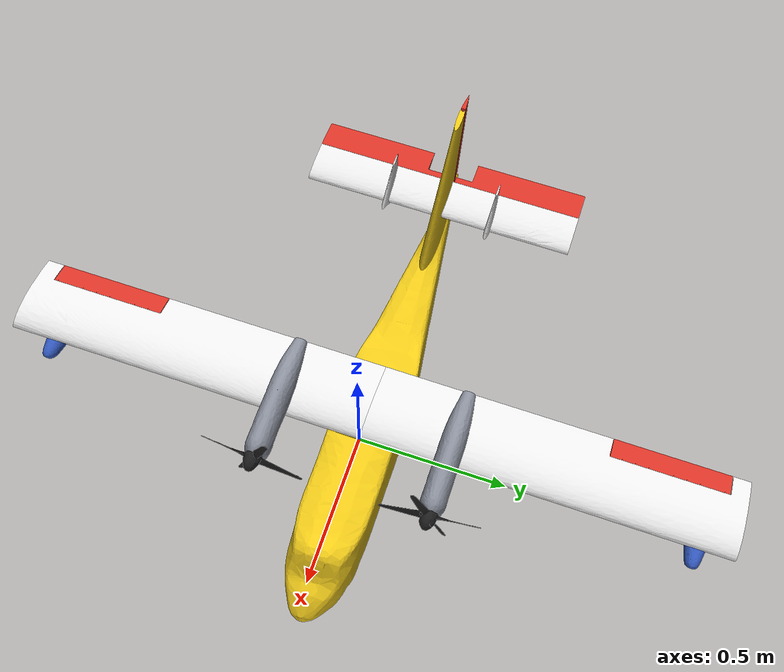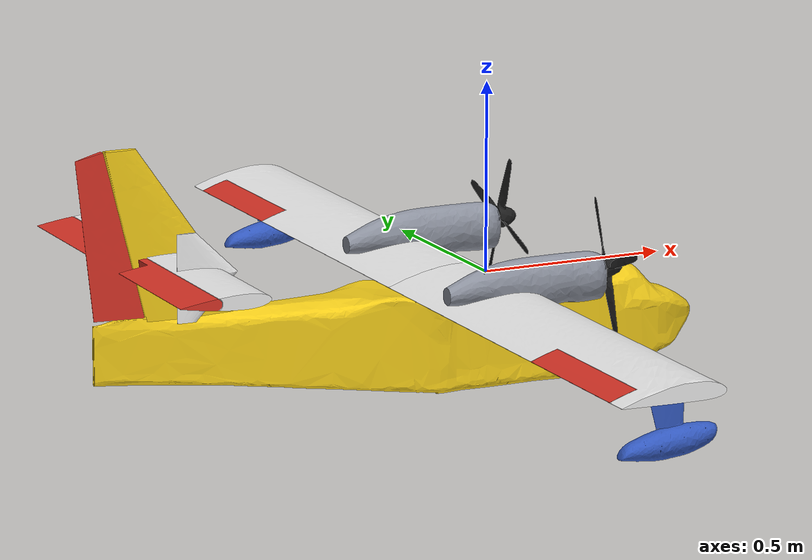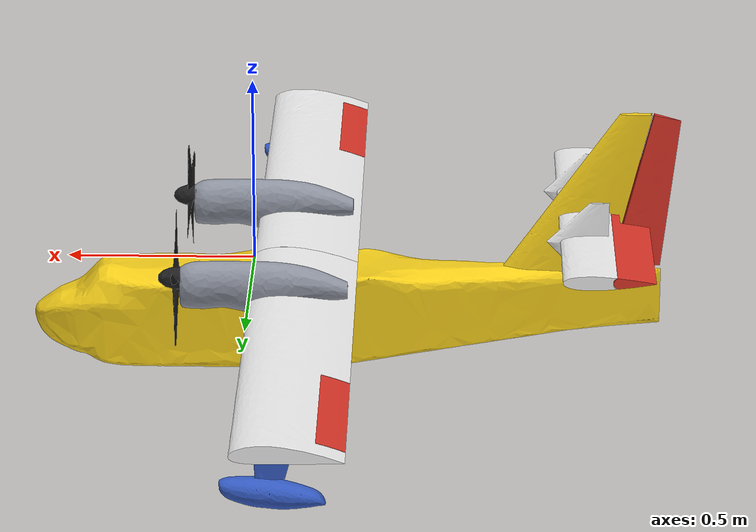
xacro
<?xml version="1.0"?>
<robot name="cl415" xmlns:xacro="http://www.ros.org/wiki/xacro">

  <xacro:arg name="tank" default="full"/>
  <xacro:arg name="water_damping" default="false"/>

  <xacro:include filename="cl415_generated.xacro"/>
  <xacro:include filename="cl415.gazebo.xacro"/>

  <xacro:property name="mesh_dir" value="package://cl415_description/meshes"/>

  <material name="cl415_yellow"><color rgba="0.95 0.80 0.10 1"/></material>
  <material name="cl415_white"><color rgba="0.92 0.92 0.92 1"/></material>
  <material name="cl415_red"><color rgba="0.85 0.20 0.15 1"/></material>
  <material name="cl415_grey"><color rgba="0.55 0.57 0.62 1"/></material>
  <material name="cl415_black"><color rgba="0.12 0.12 0.12 1"/></material>
  <material name="cl415_blue"><color rgba="0.20 0.35 0.75 1"/></material>
  <material name="cl415_tank"><color rgba="0.70 0.85 0.95 1"/></material>

  <!-- root without inertia (keeps KDL quiet); every fixed part hangs off it and gets lumped into it in SDF -->
  <link name="base_link"/>

  <!-- fixed part: mesh in the base frame, inertia and collision from the generated file -->
  <xacro:macro name="fixed_part" params="name material">
    <link name="${name}">
      <visual>
        <origin xyz="0 0 0" rpy="0 0 0"/>
        <geometry><mesh filename="${mesh_dir}/${name}.stl"/></geometry>
        <material name="${material}"/>
      </visual>
      <xacro:call macro="collision_${name}"/>
      <xacro:call macro="inertial_${name}"/>
    </link>
    <joint name="${name}_joint" type="fixed">
      <parent link="base_link"/>
      <child link="${name}"/>
      <origin xyz="0 0 0" rpy="0 0 0"/>
    </joint>
  </xacro:macro>

  <!-- control surface on its hinge line -->
  <xacro:macro name="surface" params="name parent xyz axis limit material">
    <link name="${name}">
      <visual>
        <origin xyz="0 0 0" rpy="0 0 0"/>
        <geometry><mesh filename="${mesh_dir}/${name}.stl"/></geometry>
        <material name="${material}"/>
      </visual>
      <xacro:call macro="collision_${name}"/>
      <xacro:call macro="inertial_${name}"/>
    </link>
    <joint name="${name}_joint" type="revolute">
      <parent link="${parent}"/>
      <child link="${name}"/>
      <origin xyz="${xyz}" rpy="0 0 0"/>
      <axis xyz="${axis}"/>
      <limit lower="${-limit}" upper="${limit}" effort="2.0" velocity="8.7"/>
      <dynamics damping="0.001" friction="0.0"/>
    </joint>
  </xacro:macro>

  <!-- propeller: link z points forward (thrust axis) -->
  <xacro:macro name="propeller" params="side xyz rpy">
    <link name="${side}_propeller">
      <visual>
        <origin xyz="0 0 0" rpy="0 0 0"/>
        <geometry><mesh filename="${mesh_dir}/${side}_propeller.stl"/></geometry>
        <material name="cl415_black"/>
      </visual>
      <xacro:call macro="collision_${side}_propeller"/>
      <xacro:call macro="inertial_${side}_propeller"/>
    </link>
    <joint name="${side}_propeller_joint" type="continuous">
      <parent link="${side}_nacelle"/>
      <child link="${side}_propeller"/>
      <origin xyz="${xyz}" rpy="${rpy}"/>
      <axis xyz="0 0 1"/>
      <limit effort="10.0" velocity="200.0"/>
    </joint>
  </xacro:macro>

  <xacro:fixed_part name="fuselage" material="cl415_yellow"/>
  <xacro:fixed_part name="left_wing" material="cl415_white"/>
  <xacro:fixed_part name="right_wing" material="cl415_white"/>
  <xacro:fixed_part name="h_stab" material="cl415_white"/>
  <xacro:fixed_part name="v_stab" material="cl415_yellow"/>
  <xacro:fixed_part name="left_nacelle" material="cl415_grey"/>
  <xacro:fixed_part name="right_nacelle" material="cl415_grey"/>
  <xacro:fixed_part name="left_float" material="cl415_blue"/>
  <xacro:fixed_part name="right_float" material="cl415_blue"/>

  <!-- water tank: inside the hull, so no collision (it would count twice for buoyancy) -->
  <link name="water_tank">
    <visual>
      <origin xyz="0 0 0" rpy="0 0 0"/>
      <geometry><mesh filename="${mesh_dir}/water_tank.stl"/></geometry>
      <material name="cl415_tank"/>
    </visual>
    <xacro:inertial_water_tank tank="$(arg tank)"/>
  </link>
  <joint name="water_tank_joint" type="fixed">
    <parent link="base_link"/>
    <child link="water_tank"/>
    <origin xyz="0 0 0" rpy="0 0 0"/>
  </joint>

  <xacro:surface name="left_aileron" parent="${left_aileron_parent}" xyz="${left_aileron_xyz}"
                 axis="${left_aileron_axis}" limit="${left_aileron_limit}" material="cl415_red"/>
  <xacro:surface name="right_aileron" parent="${right_aileron_parent}" xyz="${right_aileron_xyz}"
                 axis="${right_aileron_axis}" limit="${right_aileron_limit}" material="cl415_red"/>
  <xacro:surface name="elevator" parent="${elevator_parent}" xyz="${elevator_xyz}"
                 axis="${elevator_axis}" limit="${elevator_limit}" material="cl415_red"/>
  <xacro:surface name="rudder" parent="${rudder_parent}" xyz="${rudder_xyz}"
                 axis="${rudder_axis}" limit="${rudder_limit}" material="cl415_red"/>

  <xacro:propeller side="left" xyz="${left_propeller_xyz}" rpy="${left_propeller_rpy}"/>
  <xacro:propeller side="right" xyz="${right_propeller_xyz}" rpy="${right_propeller_rpy}"/>

</robot>

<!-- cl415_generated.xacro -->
<!-- generated by tools/export_description.py, do not edit. numbers come from cad/geometry.json,
     mass/mass_props.json (SolidWorks mass properties) and aero/aero_params.json -->
<robot xmlns:xacro="http://www.ros.org/wiki/xacro">

  <!-- joint frames (parent = base_link frame for every fixed part) -->
  <xacro:property name="left_aileron_xyz" value="-0.208616 0.994 -0.00231168"/>
  <xacro:property name="left_aileron_rpy" value="0 0 0"/>
  <xacro:property name="left_aileron_axis" value="0 -1 0"/>
  <xacro:property name="left_aileron_parent" value="left_wing"/>
  <xacro:property name="left_aileron_limit" value="0.436332"/>  <!-- 25 deg, positive = trailing edge down -->
  <xacro:property name="right_aileron_xyz" value="-0.208616 -0.994 -0.00231168"/>
  <xacro:property name="right_aileron_rpy" value="0 0 0"/>
  <xacro:property name="right_aileron_axis" value="0 -1 0"/>
  <xacro:property name="right_aileron_parent" value="right_wing"/>
  <xacro:property name="right_aileron_limit" value="0.436332"/>  <!-- 25 deg, positive = trailing edge down -->
  <xacro:property name="elevator_xyz" value="-0.957 0 0.127"/>
  <xacro:property name="elevator_rpy" value="0 0 0"/>
  <xacro:property name="elevator_axis" value="0 -1 0"/>
  <xacro:property name="elevator_parent" value="h_stab"/>
  <xacro:property name="elevator_limit" value="0.436332"/>  <!-- 25 deg, positive = trailing edge down -->
  <xacro:property name="rudder_xyz" value="-0.956 0 -0.0173"/>
  <xacro:property name="rudder_rpy" value="0 0 0"/>
  <xacro:property name="rudder_axis" value="0.232882 0 -0.972505"/>
  <xacro:property name="rudder_parent" value="v_stab"/>
  <xacro:property name="rudder_limit" value="0.523599"/>  <!-- 30 deg, positive = trailing edge left -->
  <xacro:property name="left_propeller_xyz" value="0.1895 0.2973 0.0606"/>
  <xacro:property name="left_propeller_rpy" value="0 1.5708 0"/>
  <xacro:property name="left_propeller_axis" value="0 0 1"/>
  <xacro:property name="left_propeller_parent" value="left_nacelle"/>
  <xacro:property name="right_propeller_xyz" value="0.1895 -0.2973 0.0606"/>
  <xacro:property name="right_propeller_rpy" value="0 1.5708 0"/>
  <xacro:property name="right_propeller_axis" value="0 0 1"/>
  <xacro:property name="right_propeller_parent" value="right_nacelle"/>

  <!-- link inertials from SolidWorks (about the link CoM, link axes) -->
  <xacro:macro name="inertial_fuselage">
    <inertial>
      <origin xyz="-0.0502618 6.00182e-06 -0.116083" rpy="0 0 0"/>
      <mass value="4.485"/>
      <inertia ixx="0.0354423" ixy="6.60874e-06" ixz="0.00630841" iyy="0.511739" iyz="-3.80614e-06" izz="0.504001"/>
    </inertial>
  </xacro:macro>
  <xacro:macro name="inertial_left_wing">
    <inertial>
      <origin xyz="-0.115004 0.628879 0.003662" rpy="0 0 0"/>
      <mass value="0.535"/>
      <inertia ixx="0.0679815" ixy="-0.000522223" ixz="-7.43268e-05" iyy="0.002095" iyz="-6.45825e-05" izz="0.0699311"/>
    </inertial>
  </xacro:macro>
  <xacro:macro name="inertial_right_wing">
    <inertial>
      <origin xyz="-0.11504 -0.628906 0.00366242" rpy="0 0 0"/>
      <mass value="0.535"/>
      <inertia ixx="0.067994" ixy="0.000523697" ixz="-7.43819e-05" iyy="0.00209416" iyz="6.42453e-05" izz="0.0699426"/>
    </inertial>
  </xacro:macro>
  <xacro:macro name="inertial_left_aileron">
    <inertial>
      <origin xyz="-0.0183503 -1.25899e-13 -0.00255249" rpy="0 0 0"/>
      <mass value="0.035"/>
      <inertia ixx="0.000463292" ixy="0" ixz="-1.74855e-06" iyy="1.44088e-05" iyz="0" izz="0.00047514"/>
    </inertial>
  </xacro:macro>
  <xacro:macro name="inertial_right_aileron">
    <inertial>
      <origin xyz="-0.0183503 -1.11577e-13 -0.00255249" rpy="0 0 0"/>
      <mass value="0.035"/>
      <inertia ixx="0.000463292" ixy="0" ixz="-1.74855e-06" iyy="1.44088e-05" iyz="0" izz="0.00047514"/>
    </inertial>
  </xacro:macro>
  <xacro:macro name="inertial_h_stab">
    <inertial>
      <origin xyz="-0.88188 1.76969e-06 0.12672" rpy="0 0 0"/>
      <mass value="0.14"/>
      <inertia ixx="0.00982238" ixy="-8.93621e-09" ixz="7.66785e-08" iyy="0.000219751" iyz="-3.80443e-08" izz="0.00994989"/>
    </inertial>
  </xacro:macro>
  <xacro:macro name="inertial_elevator">
    <inertial>
      <origin xyz="-0.0250731 1.80306e-07 1.08467e-08" rpy="0 0 0"/>
      <mass value="0.06"/>
      <inertia ixx="0.004951" ixy="-2.74619e-11" ixz="6.46448e-11" iyy="4.28332e-05" iyz="1.98386e-10" izz="0.00498889"/>
    </inertial>
  </xacro:macro>
  <xacro:macro name="inertial_v_stab">
    <inertial>
      <origin xyz="-0.881146 6.90123e-07 0.134975" rpy="0 0 0"/>
      <mass value="0.09"/>
      <inertia ixx="0.00120405" ixy="-7.84267e-09" ixz="0.000562919" iyy="0.00175931" iyz="-3.28778e-09" izz="0.000574887"/>
    </inertial>
  </xacro:macro>
  <xacro:macro name="inertial_rudder">
    <inertial>
      <origin xyz="-0.0801666 1.23625e-08 0.176709" rpy="0 0 0"/>
      <mass value="0.035"/>
      <inertia ixx="0.000478982" ixy="-2.58391e-10" ixz="9.1312e-05" iyy="0.000520003" iyz="-7.29896e-11" izz="4.30854e-05"/>
    </inertial>
  </xacro:macro>
  <xacro:macro name="inertial_left_nacelle">
    <inertial>
      <origin xyz="0.102988 0.297299 0.0547427" rpy="0 0 0"/>
      <mass value="0.47"/>
      <inertia ixx="0.000316048" ixy="1.40341e-07" ixz="-9.1157e-05" iyy="0.00343966" iyz="7.13868e-08" izz="0.00335896"/>
    </inertial>
  </xacro:macro>
  <xacro:macro name="inertial_right_nacelle">
    <inertial>
      <origin xyz="0.102988 -0.297301 0.0547416" rpy="0 0 0"/>
      <mass value="0.47"/>
      <inertia ixx="0.000316095" ixy="1.40038e-07" ixz="-9.11425e-05" iyy="0.00343966" iyz="6.70948e-08" izz="0.00335901"/>
    </inertial>
  </xacro:macro>
  <xacro:macro name="inertial_left_propeller">
    <inertial>
      <origin xyz="-9.92807e-07 2.05844e-07 0.00793929" rpy="0 0 0"/>
      <mass value="0.05"/>
      <inertia ixx="6.45217e-05" ixy="-4.17323e-11" ixz="-7.41765e-10" iyy="6.45246e-05" iyz="1.94693e-10" izz="0.000111037"/>
    </inertial>
  </xacro:macro>
  <xacro:macro name="inertial_right_propeller">
    <inertial>
      <origin xyz="-2.1926e-07 -2.95184e-07 0.00793936" rpy="0 0 0"/>
      <mass value="0.05"/>
      <inertia ixx="6.45218e-05" ixy="1.39655e-09" ixz="-2.59661e-10" iyy="6.45338e-05" iyz="-1.62735e-10" izz="0.000111046"/>
    </inertial>
  </xacro:macro>
  <xacro:macro name="inertial_left_float">
    <inertial>
      <origin xyz="-0.0799943 1.1517 -0.117561" rpy="0 0 0"/>
      <mass value="0.13"/>
      <inertia ixx="0.000273577" ixy="-3.63241e-08" ixz="-4.45738e-05" iyy="0.000950439" iyz="1.42658e-09" izz="0.000741465"/>
    </inertial>
  </xacro:macro>
  <xacro:macro name="inertial_right_float">
    <inertial>
      <origin xyz="-0.0799944 -1.1517 -0.117561" rpy="0 0 0"/>
      <mass value="0.13"/>
      <inertia ixx="0.000273577" ixy="-3.63075e-08" ixz="-4.45738e-05" iyy="0.000950439" iyz="1.43084e-09" izz="0.000741466"/>
    </inertial>
  </xacro:macro>
  <xacro:macro name="inertial_water_tank" params="tank">
    <xacro:if value="${tank == 'full'}">
      <inertial>
        <origin xyz="-0.0694257 3.0847e-18 -0.187676" rpy="0 0 0"/>
        <mass value="3.25"/>
        <inertia ixx="0.00927936" ixy="0" ixz="0" iyy="0.0140512" iyz="0" izz="0.0174169"/>
      </inertial>
    </xacro:if>
    <xacro:if value="${tank == 'empty'}">
      <inertial>
        <origin xyz="-0.0694257 1.94229e-17 -0.187676" rpy="0 0 0"/>
        <mass value="0.25"/>
        <inertia ixx="0.00118536" ixy="0" ixz="0" iyy="0.00163559" iyz="0" izz="0.00197235"/>
      </inertial>
    </xacro:if>
  </xacro:macro>

  <!-- servo pid gains: p = I wn^2, d = 2 zeta wn I, i = p wn / 25, wn = 80 rad/s, zeta = 1.0,
       I = inertia about the hinge axis; torque capped at 0.5 N m like a 5 kg cm servo -->
  <xacro:property name="servo_left_aileron_p" value="0.1691"/>  <!-- hinge inertia 2.64e-05 kg m^2 -->
  <xacro:property name="servo_left_aileron_d" value="0.004228"/>
  <xacro:property name="servo_left_aileron_i" value="0.5411"/>
  <xacro:property name="servo_right_aileron_p" value="0.1691"/>  <!-- hinge inertia 2.64e-05 kg m^2 -->
  <xacro:property name="servo_right_aileron_d" value="0.004228"/>
  <xacro:property name="servo_right_aileron_i" value="0.5411"/>
  <xacro:property name="servo_elevator_p" value="0.5155"/>  <!-- hinge inertia 8.06e-05 kg m^2 -->
  <xacro:property name="servo_elevator_d" value="0.01289"/>
  <xacro:property name="servo_elevator_i" value="1.65"/>
  <xacro:property name="servo_rudder_p" value="0.4659"/>  <!-- hinge inertia 7.28e-05 kg m^2 -->
  <xacro:property name="servo_rudder_d" value="0.01165"/>
  <xacro:property name="servo_rudder_i" value="1.491"/>
  <xacro:property name="servo_torque_max" value="0.5"/>

  <!-- collision primitives (boxes / cylinders, sized from the CAD; the hull boxes keep the hull volume
       so graded buoyancy floats it at the right draft) -->
  <xacro:macro name="collision_fuselage">
    <collision name="fuselage_c0">
      <origin xyz="0.53251 0 -0.180291" rpy="0 0 0"/>
      <geometry><box size="0.12502 0.111893 0.149215"/></geometry>
    </collision>
    <collision name="fuselage_c1">
      <origin xyz="0.385 0 -0.151395" rpy="0 0 0"/>
      <geometry><box size="0.17 0.199089 0.265143"/></geometry>
    </collision>
    <collision name="fuselage_c2">
      <origin xyz="0.0799637 0 -0.161945" rpy="0 0 0"/>
      <geometry><box size="0.440073 0.210101 0.289189"/></geometry>
    </collision>
    <collision name="fuselage_c3">
      <origin xyz="-0.295036 0 -0.142785" rpy="0 0 0"/>
      <geometry><box size="0.309927 0.197964 0.250871"/></geometry>
    </collision>
    <collision name="fuselage_c4">
      <origin xyz="-0.6 0 -0.123921" rpy="0 0 0"/>
      <geometry><box size="0.3 0.120182 0.213138"/></geometry>
    </collision>
    <collision name="fuselage_c5">
      <origin xyz="-0.921249 0 -0.104179" rpy="0 0 0"/>
      <geometry><box size="0.342498 0.0381242 0.169682"/></geometry>
    </collision>
  </xacro:macro>
  <xacro:macro name="collision_left_wing">
    <collision name="left_wing_c0">
      <origin xyz="-0.139351 0.6275 0.00437292" rpy="0 -0.0462512 0"/>
      <geometry><box size="0.278 1.255 0.04726"/></geometry>
    </collision>
  </xacro:macro>
  <xacro:macro name="collision_right_wing">
    <collision name="right_wing_c0">
      <origin xyz="-0.139351 -0.6275 0.00437292" rpy="0 -0.0462512 0"/>
      <geometry><box size="0.278 1.255 0.04726"/></geometry>
    </collision>
  </xacro:macro>
  <xacro:macro name="collision_h_stab">
    <collision name="h_stab_c0">
      <origin xyz="-0.885 0 0.127" rpy="0 0 0"/>
      <geometry><box size="0.144 0.936 0.03824"/></geometry>
    </collision>
  </xacro:macro>
  <xacro:macro name="collision_v_stab">
    <collision name="v_stab_c0">
      <origin xyz="-0.862743 2.99235e-05 0.19685" rpy="0 0 0"/>
      <geometry><box size="0.351455 0.0470609 0.401706"/></geometry>
    </collision>
  </xacro:macro>
  <xacro:macro name="collision_left_nacelle">
    <collision name="left_nacelle_c0">
      <origin xyz="-0.0397429 0.297301 0.0378593" rpy="0 0 0"/>
      <geometry><box size="0.394805 0.0782283 0.126691"/></geometry>
    </collision>
  </xacro:macro>
  <xacro:macro name="collision_right_nacelle">
    <collision name="right_nacelle_c0">
      <origin xyz="-0.0397429 -0.297299 0.0378593" rpy="0 0 0"/>
      <geometry><box size="0.394805 0.0782283 0.126691"/></geometry>
    </collision>
  </xacro:macro>
  <xacro:macro name="collision_water_tank">
  </xacro:macro>
  <xacro:macro name="collision_left_float">
    <collision name="left_float_c0">
      <origin xyz="-0.0998906 1.1517 -0.141779" rpy="0 0 0"/>
      <geometry><box size="0.257488 0.0370828 0.0804182"/></geometry>
    </collision>
    <collision name="left_float_c1">
      <origin xyz="-0.1 1.1517 -0.0515695" rpy="0 0 0"/>
      <geometry><box size="0.08 0.009 0.1"/></geometry>
    </collision>
  </xacro:macro>
  <xacro:macro name="collision_right_float">
    <collision name="right_float_c0">
      <origin xyz="-0.0998906 -1.1517 -0.141779" rpy="0 0 0"/>
      <geometry><box size="0.257488 0.0370828 0.0804182"/></geometry>
    </collision>
    <collision name="right_float_c1">
      <origin xyz="-0.1 -1.1517 -0.0515695" rpy="0 0 0"/>
      <geometry><box size="0.08 0.009 0.1"/></geometry>
    </collision>
  </xacro:macro>
  <xacro:macro name="collision_left_aileron">
    <collision name="left_aileron_c0">
      <origin xyz="-0.028366 -3.70259e-14 0.000130868" rpy="0 0 0"/>
      <geometry><box size="0.0816176 0.398 0.0249637"/></geometry>
    </collision>
  </xacro:macro>
  <xacro:macro name="collision_right_aileron">
    <collision name="right_aileron_c0">
      <origin xyz="-0.028366 -5.55112e-17 0.000130868" rpy="0 0 0"/>
      <geometry><box size="0.0816176 0.398 0.0249637"/></geometry>
    </collision>
  </xacro:macro>
  <xacro:macro name="collision_elevator">
    <collision name="elevator_c0">
      <origin xyz="-0.0402763 -2.77556e-17 -1.38778e-17" rpy="0 0 0"/>
      <geometry><box size="0.109447 0.936 0.0289521"/></geometry>
    </collision>
  </xacro:macro>
  <xacro:macro name="collision_rudder">
    <collision name="rudder_c0">
      <origin xyz="-0.0881958 -1.73472e-18 0.21965" rpy="0 0 0"/>
      <geometry><box size="0.173997 0.0315507 0.4293"/></geometry>
    </collision>
  </xacro:macro>
  <xacro:macro name="collision_left_propeller">
    <collision name="left_propeller_c0">
      <origin xyz="0 0 0.01745" rpy="0 0 0"/>
      <geometry><cylinder radius="0.0296" length="0.0589"/></geometry>
    </collision>
  </xacro:macro>
  <xacro:macro name="collision_right_propeller">
    <collision name="right_propeller_c0">
      <origin xyz="0 0 0.01745" rpy="0 0 0"/>
      <geometry><cylinder radius="0.0296" length="0.0589"/></geometry>
    </collision>
  </xacro:macro>

  <!-- LiftDrag elements, see aero/report.md for where each number comes from -->
  <xacro:macro name="lift_drag_plugins">
    <!-- left_wing -->
    <gazebo>
      <plugin filename="gz-sim-lift-drag-system" name="gz::sim::systems::LiftDrag">
        <link_name>base_link</link_name>
        <air_density>1.225</air_density>
        <area>0.349018</area>
        <cp>-0.0694257 0.6275 -0.00321331</cp>
        <forward>1 0 0</forward>
        <upward>0 0 1</upward>
        <a0>0.118761</a0>
        <cla>4.84994</cla>
        <cda>0.427176</cda>
        <cma>0</cma>
        <alpha_stall>0.276698</alpha_stall>
        <cla_stall>-1.85638</cla_stall>
        <cda_stall>1.73344</cda_stall>
        <cma_stall>0</cma_stall>
        <control_joint_name>left_aileron_joint</control_joint_name>
        <control_joint_rad_to_cl>1.49813</control_joint_rad_to_cl>
        <cm_delta>-0.0520359</cm_delta>
      </plugin>
    </gazebo>
    <!-- right_wing -->
    <gazebo>
      <plugin filename="gz-sim-lift-drag-system" name="gz::sim::systems::LiftDrag">
        <link_name>base_link</link_name>
        <air_density>1.225</air_density>
        <area>0.349018</area>
        <cp>-0.0694257 -0.6275 -0.00321331</cp>
        <forward>1 0 0</forward>
        <upward>0 0 1</upward>
        <a0>0.118761</a0>
        <cla>4.84994</cla>
        <cda>0.427176</cda>
        <cma>0</cma>
        <alpha_stall>0.276698</alpha_stall>
        <cla_stall>-1.85638</cla_stall>
        <cda_stall>1.73344</cda_stall>
        <cma_stall>0</cma_stall>
        <control_joint_name>right_aileron_joint</control_joint_name>
        <control_joint_rad_to_cl>1.49813</control_joint_rad_to_cl>
        <cm_delta>-0.0520359</cm_delta>
      </plugin>
    </gazebo>
    <!-- h_stab -->
    <gazebo>
      <plugin filename="gz-sim-lift-drag-system" name="gz::sim::systems::LiftDrag">
        <link_name>base_link</link_name>
        <air_density>1.225</air_density>
        <area>0.223704</area>
        <cp>-0.87275 0 0.127</cp>
        <forward>1 0 0</forward>
        <upward>0 0 1</upward>
        <a0>-0.0617526</a0>
        <cla>2.2158</cla>
        <cda>0.215845</cda>
        <cma>0</cma>
        <alpha_stall>0.478461</alpha_stall>
        <cla_stall>-1.1079</cla_stall>
        <cda_stall>1</cda_stall>
        <cma_stall>0</cma_stall>
        <control_joint_name>elevator_joint</control_joint_name>
        <control_joint_rad_to_cl>2.14528</control_joint_rad_to_cl>
        <cm_delta>-0.0974998</cm_delta>
      </plugin>
    </gazebo>
    <!-- v_stab -->
    <gazebo>
      <plugin filename="gz-sim-lift-drag-system" name="gz::sim::systems::LiftDrag">
        <link_name>base_link</link_name>
        <air_density>1.225</air_density>
        <area>0.174408</area>
        <cp>-0.879768 0 0.155968</cp>
        <forward>1 0 0</forward>
        <upward>0 1 0</upward>
        <a0>0</a0>
        <cla>2.4169</cla>
        <cda>0.208619</cda>
        <cma>0</cma>
        <alpha_stall>0.401426</alpha_stall>
        <cla_stall>-1.20845</cla_stall>
        <cda_stall>1</cda_stall>
        <cma_stall>0</cma_stall>
        <control_joint_name>rudder_joint</control_joint_name>
        <control_joint_rad_to_cl>-1.2843</control_joint_rad_to_cl>
        <cm_delta>0.109399</cm_delta>
      </plugin>
    </gazebo>
  </xacro:macro>

  <!-- propulsion, one MulticopterMotorModel per prop. command: gz.msgs.Actuators on
       /cl415/command/motor_speed, velocity[0] = left, velocity[1] = right, in rad/s -->
  <xacro:macro name="motor_plugins">
    <gazebo>
      <plugin filename="gz-sim-multicopter-motor-model-system" name="gz::sim::systems::MulticopterMotorModel">
        <robotNamespace>cl415</robotNamespace>
        <jointName>left_propeller_joint</jointName>
        <linkName>left_propeller</linkName>
        <turningDirection>ccw</turningDirection>
        <timeConstantUp>0.0125</timeConstantUp>
        <timeConstantDown>0.025</timeConstantDown>
        <maxRotVelocity>890.118</maxRotVelocity>
        <motorConstant>4.2079e-05</motorConstant>
        <momentConstant>0.0299455</momentConstant>
        <commandSubTopic>command/motor_speed</commandSubTopic>
        <motorNumber>0</motorNumber>
        <rotorDragCoefficient>0.0001</rotorDragCoefficient>
        <rollingMomentCoefficient>1e-06</rollingMomentCoefficient>
        <rotorVelocitySlowdownSim>10</rotorVelocitySlowdownSim>
        <motorType>velocity</motorType>
      </plugin>
    </gazebo>
    <gazebo>
      <plugin filename="gz-sim-multicopter-motor-model-system" name="gz::sim::systems::MulticopterMotorModel">
        <robotNamespace>cl415</robotNamespace>
        <jointName>right_propeller_joint</jointName>
        <linkName>right_propeller</linkName>
        <turningDirection>cw</turningDirection>
        <timeConstantUp>0.0125</timeConstantUp>
        <timeConstantDown>0.025</timeConstantDown>
        <maxRotVelocity>890.118</maxRotVelocity>
        <motorConstant>4.2079e-05</motorConstant>
        <momentConstant>0.0299455</momentConstant>
        <commandSubTopic>command/motor_speed</commandSubTopic>
        <motorNumber>1</motorNumber>
        <rotorDragCoefficient>0.0001</rotorDragCoefficient>
        <rollingMomentCoefficient>1e-06</rollingMomentCoefficient>
        <rotorVelocitySlowdownSim>10</rotorVelocitySlowdownSim>
        <motorType>velocity</motorType>
      </plugin>
    </gazebo>
  </xacro:macro>

</robot>
